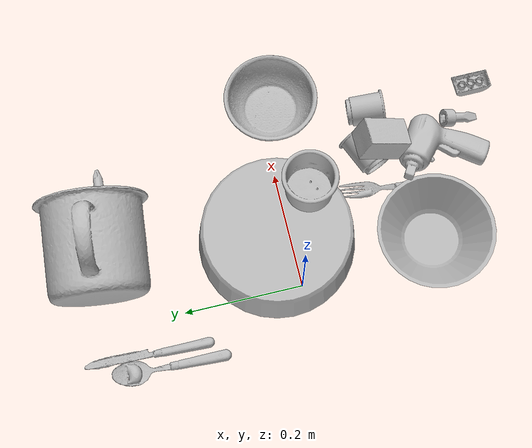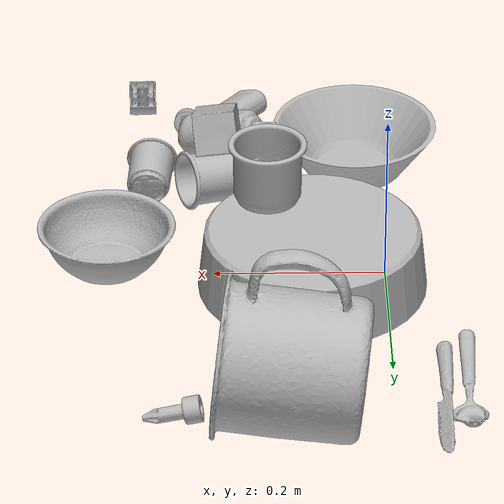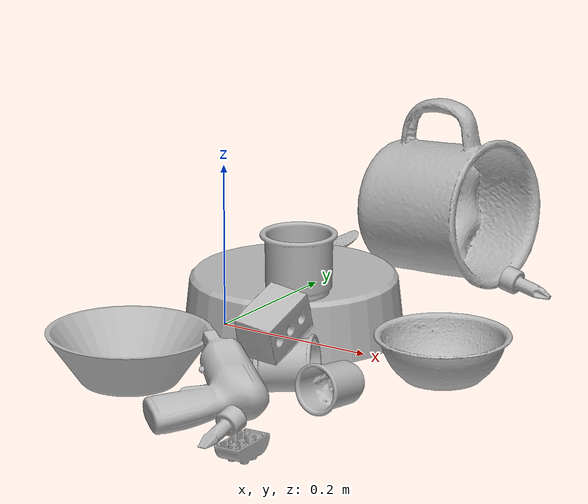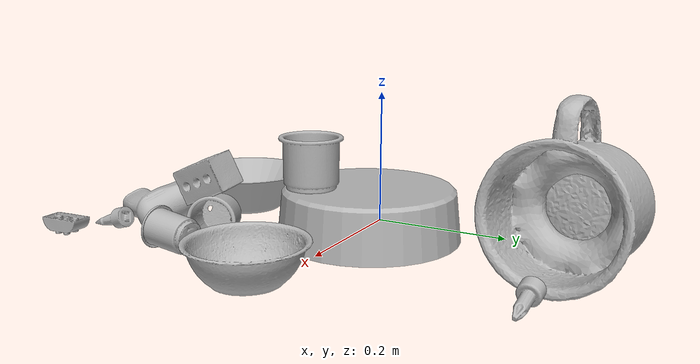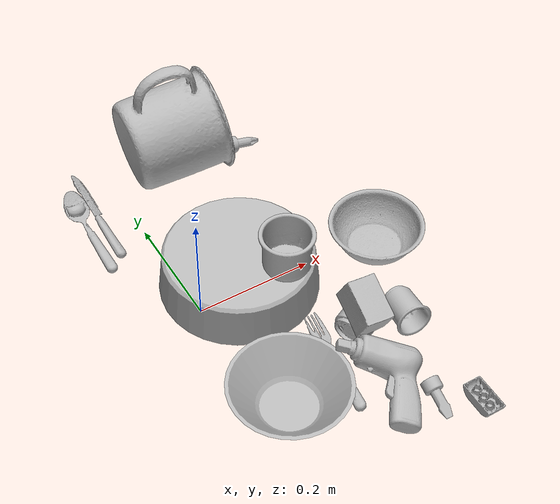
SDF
<sdf version="1.4">
  <world name="default">
    <light name="light1" type="point">
      <pose>0 0 1 0 0 0</pose>
      <diffuse>3 3 3 1</diffuse>
      <specular>3 3 3 1</specular>
    </light>
    <light name="light2" type="point">
      <pose>0 0.5 2 0 0 0</pose>
      <diffuse>1 1 1 1</diffuse>
      <specular>1 1 1 1</specular>
    </light>
    <light name="light3" type="point">
      <pose>0 0.5 2 0 0 0</pose>
      <diffuse>3 3 3 1</diffuse>
      <specular>3 3 3 1</specular>
    </light>
    <scene>
      <ambient>0.7 0.7 0.7</ambient>
    </scene>
    <model name="plate1">
      <link name="link_plate1">
        <collision name="default">
          <geometry>
            <mesh>
              <uri>model://pan_tefal/collision_meshes/collision.obj</uri>
              <scale>1.0 1.0 1.0</scale>
            </mesh>
          </geometry>
          <surface>
            <friction>
              <ode>
                <mu>0.5</mu>
                <mu2>0.5</mu2>
              </ode>
            </friction>
          <contact>
        <ode>
            <max_vel>0</max_vel>
            <min_depth>0.0001</min_depth>
            <kp>1e8</kp>
        </ode>
    </contact></surface>
        </collision>
        <visual name="default">
          <geometry>
            <mesh>
              <uri>model://pan_tefal/visual_meshes/visual.dae</uri>
              <scale>1.0 1.0 1.0</scale>
            </mesh>
          </geometry>
        </visual>
        <inertial>
          <mass>1.356081485748291</mass>
          <pose>-0.00018001878925133497 3.2792810088722035e-05 -0.008514934219419956 0.000819032333381865 -0.0003301471985614655 -0.33185384828338066</pose>
          <inertia>
            <ixx>0.009360965</ixx>
            <iyy>0.009421317</iyy>
            <izz>0.017231734</izz>
            <ixy>0</ixy>
            <ixz>0</ixz>
            <iyz>0</iyz>
          </inertia>
        </inertial>
      </link>
      <pose>0.0852552205324173 0.023022688925266266 0.037822023034095764 -3.1415926233841303 5.599329776042645e-09 1.0284705755793457</pose>
    </model>
    <model name="cup1">
      <link name="link_cup1">
        <collision name="default">
          <geometry>
            <mesh>
              <uri>model://mug/collision_meshes/collision.obj</uri>
              <scale>2.0 2.0 2.0</scale>
            </mesh>
          </geometry>
          <surface>
            <friction>
              <ode>
                <mu>0.5</mu>
                <mu2>0.5</mu2>
              </ode>
            </friction>
          <contact>
        <ode>
            <max_vel>0</max_vel>
            <min_depth>0.0001</min_depth>
            <kp>1e8</kp>
        </ode>
    </contact></surface>
        </collision>
        <visual name="default">
          <geometry>
            <mesh>
              <uri>model://mug/visual_meshes/visual.dae</uri>
              <scale>2.0 2.0 2.0</scale>
            </mesh>
          </geometry>
        </visual>
        <inertial>
          <mass>1.425228476524353</mass>
          <pose>0.019143342971801758 0.0016286519821733236 -0.021894657984375954 -0.12983169455958588 0.08737743422724535 0.05507285753370488</pose>
          <inertia>
            <ixx>0.005662833</ixx>
            <iyy>0.0063250507</iyy>
            <izz>0.0073150056</izz>
            <ixy>0</ixy>
            <ixz>0</ixz>
            <iyz>0</iyz>
          </inertia>
        </inertial>
      </link>
      <pose>0.11447884142398834 0.3138010501861572 0.11068855226039886 -0.06274973535345098 1.4841693195555687 -0.15985946760604372</pose>
    </model>
    <model name="silverware1">
      <link name="link_silverware1">
        <collision name="default">
          <geometry>
            <mesh>
              <uri>model://spoon/collision_meshes/collision.obj</uri>
              <scale>1.0 1.0 1.0</scale>
            </mesh>
          </geometry>
          <surface>
            <friction>
              <ode>
                <mu>0.5</mu>
                <mu2>0.5</mu2>
              </ode>
            </friction>
          <contact>
        <ode>
            <max_vel>0</max_vel>
            <min_depth>0.0001</min_depth>
            <kp>1e8</kp>
        </ode>
    </contact></surface>
        </collision>
        <visual name="default">
          <geometry>
            <mesh>
              <uri>model://spoon/visual_meshes/visual.dae</uri>
              <scale>1.0 1.0 1.0</scale>
            </mesh>
          </geometry>
        </visual>
        <inertial>
          <mass>0.031423501670360565</mass>
          <pose>-0.005526318680495024 -0.0016034176805987954 -0.000727165665011853 0.035217765619004186 -0.03906586018731898 0.006150610672177042</pose>
          <inertia>
            <ixx>1.7478262e-06</ixx>
            <iyy>0.0001195654</iyy>
            <izz>0.000120427336</izz>
            <ixy>0</ixy>
            <ixz>0</ixz>
            <iyz>0</iyz>
          </inertia>
        </inertial>
      </link>
      <pose>-0.08358490467071533 0.23938246071338654 0.00838525965809822 0.0067252572429125175 0.026893015016804522 1.5303759620922177</pose>
    </model>
    <model name="silverware2">
      <link name="link_silverware2">
        <collision name="default">
          <geometry>
            <mesh>
              <uri>model://fork/collision_meshes/collision.obj</uri>
              <scale>1.0 1.0 1.0</scale>
            </mesh>
          </geometry>
          <surface>
            <friction>
              <ode>
                <mu>0.5</mu>
                <mu2>0.5</mu2>
              </ode>
            </friction>
          <contact>
        <ode>
            <max_vel>0</max_vel>
            <min_depth>0.0001</min_depth>
            <kp>1e8</kp>
        </ode>
    </contact></surface>
        </collision>
        <visual name="default">
          <geometry>
            <mesh>
              <uri>model://fork/visual_meshes/visual.dae</uri>
              <scale>1.0 1.0 1.0</scale>
            </mesh>
          </geometry>
        </visual>
        <inertial>
          <mass>0.02368462271988392</mass>
          <pose>-0.02957003191113472 0.00046588238910771906 0.00032188621116802096 -0.013550757689210725 -0.010977831639922976 0.014453892765665301</pose>
          <inertia>
            <ixx>8.3028004e-07</ixx>
            <iyy>6.183376e-05</iyy>
            <izz>6.220513e-05</izz>
            <ixy>0</ixy>
            <ixz>0</ixz>
            <iyz>0</iyz>
          </inertia>
        </inertial>
      </link>
      <pose>0.13116908073425293 -0.1999531388282776 0.005689631216228008 -0.18889797373645317 0.024847456943211336 1.426218833964278</pose>
    </model>
    <model name="silverware3">
      <link name="link_silverware3">
        <collision name="default">
          <geometry>
            <mesh>
              <uri>model://knife/collision_meshes/collision.obj</uri>
              <scale>1.0 1.0 1.0</scale>
            </mesh>
          </geometry>
          <surface>
            <friction>
              <ode>
                <mu>0.5</mu>
                <mu2>0.5</mu2>
              </ode>
            </friction>
          <contact>
        <ode>
            <max_vel>0</max_vel>
            <min_depth>0.0001</min_depth>
            <kp>1e8</kp>
        </ode>
    </contact></surface>
        </collision>
        <visual name="default">
          <geometry>
            <mesh>
              <uri>model://knife/visual_meshes/visual.dae</uri>
              <scale>1.0 1.0 1.0</scale>
            </mesh>
          </geometry>
        </visual>
        <inertial>
          <mass>0.023530498147010803</mass>
          <pose>-0.023785250261425972 0.0015275124460458755 5.062020863988437e-05 0.07305757972864607 0.01724841573343299 -0.007409825279630946</pose>
          <inertia>
            <ixx>6.678909e-07</ixx>
            <iyy>9.040038e-05</iyy>
            <izz>9.0615475e-05</izz>
            <ixy>0</ixy>
            <ixz>0</ixz>
            <iyz>0</iyz>
          </inertia>
        </inertial>
      </link>
      <pose>-0.053953371942043304 0.27013689279556274 0.008207663893699646 0.5111064068576685 -0.012255587710194768 1.5346968770049145</pose>
    </model>
    <model name="cup3">
      <link name="link_cup3">
        <collision name="default">
          <geometry>
            <mesh>
              <uri>model://b_cups/collision_meshes/collision.obj</uri>
              <scale>1.0 1.0 1.0</scale>
            </mesh>
          </geometry>
          <surface>
            <friction>
              <ode>
                <mu>0.5</mu>
                <mu2>0.5</mu2>
              </ode>
            </friction>
          <contact>
        <ode>
            <max_vel>0</max_vel>
            <min_depth>0.0001</min_depth>
            <kp>1e8</kp>
        </ode>
    </contact></surface>
        </collision>
        <visual name="default">
          <geometry>
            <mesh>
              <uri>model://b_cups/visual_meshes/visual.dae</uri>
              <scale>1.0 1.0 1.0</scale>
            </mesh>
          </geometry>
        </visual>
        <inertial>
          <mass>0.033049143850803375</mass>
          <pose>0.0005182002205401659 0.001805859967134893 -0.0013381808530539274 0.11356265792291019 0.03872585472979472 -0.3457023826899558</pose>
          <inertia>
            <ixx>2.1632983e-05</ixx>
            <iyy>2.1222275e-05</iyy>
            <izz>1.8203747e-05</izz>
            <ixy>0</ixy>
            <ixz>0</ixz>
            <iyz>0</iyz>
          </inertia>
        </inertial>
      </link>
      <pose>0.27329444885253906 -0.18020318448543549 0.027739951387047768 -1.4801454065059108 -0.02770851965151554 3.045525235522357</pose>
    </model>
    <model name="cup4">
      <link name="link_cup4">
        <collision name="default">
          <geometry>
            <mesh>
              <uri>model://h_cups/collision_meshes/collision.obj</uri>
              <scale>1.0 1.0 1.0</scale>
            </mesh>
          </geometry>
          <surface>
            <friction>
              <ode>
                <mu>0.5</mu>
                <mu2>0.5</mu2>
              </ode>
            </friction>
          <contact>
        <ode>
            <max_vel>0</max_vel>
            <min_depth>0.0001</min_depth>
            <kp>1e8</kp>
        </ode>
    </contact></surface>
        </collision>
        <visual name="default">
          <geometry>
            <mesh>
              <uri>model://h_cups/visual_meshes/visual.dae</uri>
              <scale>1.0 1.0 1.0</scale>
            </mesh>
          </geometry>
        </visual>
        <inertial>
          <mass>0.11347958445549011</mass>
          <pose>-2.7030910132452846e-05 0.00023018615320324898 -0.0018405403243377805 -0.02436217983877791 0.06545222634893223 0.12885210457354207</pose>
          <inertia>
            <ixx>0.0001465536</ixx>
            <iyy>0.00014480477</iyy>
            <izz>0.00015369456</izz>
            <ixy>0</ixy>
            <ixz>0</ixz>
            <iyz>0</iyz>
          </inertia>
        </inertial>
      </link>
      <pose>0.13588660955429077 -0.0429273322224617 0.11358025670051575 -0.0013267827077756294 -0.0009696515497969379 1.9682519617895515</pose>
    </model>
    <model name="cup5">
      <link name="link_cup5">
        <collision name="default">
          <geometry>
            <mesh>
              <uri>model://d_cups/collision_meshes/collision.obj</uri>
              <scale>1.0 1.0 1.0</scale>
            </mesh>
          </geometry>
          <surface>
            <friction>
              <ode>
                <mu>0.5</mu>
                <mu2>0.5</mu2>
              </ode>
            </friction>
          <contact>
        <ode>
            <max_vel>0</max_vel>
            <min_depth>0.0001</min_depth>
            <kp>1e8</kp>
        </ode>
    </contact></surface>
        </collision>
        <visual name="default">
          <geometry>
            <mesh>
              <uri>model://d_cups/visual_meshes/visual.dae</uri>
              <scale>1.0 1.0 1.0</scale>
            </mesh>
          </geometry>
        </visual>
        <inertial>
          <mass>0.039110079407691956</mass>
          <pose>0.0008068050956353545 0.0019117392366752028 -0.0022666517179459333 0.24011224021147495 -0.247107611945545 0.594295747375292</pose>
          <inertia>
            <ixx>3.2744327e-05</ixx>
            <iyy>3.2649565e-05</iyy>
            <izz>2.9639183e-05</izz>
            <ixy>0</ixy>
            <ixz>0</ixz>
            <iyz>0</iyz>
          </inertia>
        </inertial>
      </link>
      <pose>0.1989983171224594 -0.16332069039344788 0.03250465169548988 1.4114636375089846 0.9743959555092851 1.8436758203841257</pose>
    </model>
    <model name="bowl1">
      <link name="link_bowl1">
        <collision name="default">
          <geometry>
            <mesh>
              <uri>model://bowl/collision_meshes/collision.obj</uri>
              <scale>1.0 1.0 1.0</scale>
            </mesh>
          </geometry>
          <surface>
            <friction>
              <ode>
                <mu>0.5</mu>
                <mu2>0.5</mu2>
              </ode>
            </friction>
          <contact>
        <ode>
            <max_vel>0</max_vel>
            <min_depth>0.0001</min_depth>
            <kp>1e8</kp>
        </ode>
    </contact></surface>
        </collision>
        <visual name="default">
          <geometry>
            <mesh>
              <uri>model://bowl/visual_meshes/visual.dae</uri>
              <scale>1.0 1.0 1.0</scale>
            </mesh>
          </geometry>
        </visual>
        <inertial>
          <mass>0.04740063101053238</mass>
          <pose>0.00020445372501853853 -0.001030205050483346 -0.000804265437182039 -0.015764138065403298 0.014546740803255881 0.7140373892972721</pose>
          <inertia>
            <ixx>0.00010888298</ixx>
            <iyy>0.000106450105</iyy>
            <izz>0.00018317858</izz>
            <ixy>0</ixy>
            <ixz>0</ixz>
            <iyz>0</iyz>
          </inertia>
        </inertial>
      </link>
      <pose>0.32318541407585144 -0.022872615605592728 0.02778000198304653 -5.14970753728377e-08 -4.9182099599381046e-08 -1.9164022535140774</pose>
    </model>
    <model name="bowl2">
      <link name="link_bowl2">
        <collision name="default">
          <geometry>
            <mesh>
              <uri>model://bowl_a/collision_meshes/collision.obj</uri>
              <scale>1.0 1.0 1.0</scale>
            </mesh>
          </geometry>
          <surface>
            <friction>
              <ode>
                <mu>0.5</mu>
                <mu2>0.5</mu2>
              </ode>
            </friction>
          <contact>
        <ode>
            <max_vel>0</max_vel>
            <min_depth>0.0001</min_depth>
            <kp>1e8</kp>
        </ode>
    </contact></surface>
        </collision>
        <visual name="default">
          <geometry>
            <mesh>
              <uri>model://bowl_a/visual_meshes/visual.dae</uri>
              <scale>1.0 1.0 1.0</scale>
            </mesh>
          </geometry>
        </visual>
        <inertial>
          <mass>0.4596928358078003</mass>
          <pose>0.0002786756376735866 4.731212538899854e-05 -0.001376529224216938 -0.0009805332698969178 -0.0010938264579112213 -0.1912378887702168</pose>
          <inertia>
            <ixx>0.0013087663</ixx>
            <iyy>0.0013168014</iyy>
            <izz>0.002327691</izz>
            <ixy>0</ixy>
            <ixz>0</ixz>
            <iyz>0</iyz>
          </inertia>
        </inertial>
      </link>
      <pose>0.026780668646097183 -0.2326718419790268 0.03038310445845127 5.091828029954102e-06 4.628328782057095e-06 2.1691705760069744</pose>
    </model>
    <model name="toy1">
      <link name="link_toy1">
        <collision name="default">
          <geometry>
            <mesh>
              <uri>model://d_toy_airplane/collision_meshes/collision.obj</uri>
              <scale>1.0 1.0 1.0</scale>
            </mesh>
          </geometry>
          <surface>
            <friction>
              <ode>
                <mu>0.5</mu>
                <mu2>0.5</mu2>
              </ode>
            </friction>
          <contact>
        <ode>
            <max_vel>0</max_vel>
            <min_depth>0.0001</min_depth>
            <kp>1e8</kp>
        </ode>
    </contact></surface>
        </collision>
        <visual name="default">
          <geometry>
            <mesh>
              <uri>model://d_toy_airplane/visual_meshes/visual.dae</uri>
              <scale>1.0 1.0 1.0</scale>
            </mesh>
          </geometry>
        </visual>
        <inertial>
          <mass>0.017302583903074265</mass>
          <pose>9.410295751877129e-05 -5.809326466987841e-05 -0.011728093028068542 0.00026573120399734447 0.004679044314999465 0.5192011935173154</pose>
          <inertia>
            <ixx>5.1869783e-06</ixx>
            <iyy>5.190892e-06</iyy>
            <izz>1.5659823e-06</izz>
            <ixy>0</ixy>
            <ixz>0</ixz>
            <iyz>0</iyz>
          </inertia>
        </inertial>
      </link>
      <pose>0.24819138646125793 0.29784175753593445 0.011408176273107529 1.795841626545675 0.23016140467159482 1.5878580157000521</pose>
    </model>
    <model name="toy2">
      <link name="link_toy2">
        <collision name="default">
          <geometry>
            <mesh>
              <uri>model://b_toy_airplane/collision_meshes/collision.obj</uri>
              <scale>1.0 1.0 1.0</scale>
            </mesh>
          </geometry>
          <surface>
            <friction>
              <ode>
                <mu>0.5</mu>
                <mu2>0.5</mu2>
              </ode>
            </friction>
          <contact>
        <ode>
            <max_vel>0</max_vel>
            <min_depth>0.0001</min_depth>
            <kp>1e8</kp>
        </ode>
    </contact></surface>
        </collision>
        <visual name="default">
          <geometry>
            <mesh>
              <uri>model://b_toy_airplane/visual_meshes/visual.dae</uri>
              <scale>1.0 1.0 1.0</scale>
            </mesh>
          </geometry>
        </visual>
        <inertial>
          <mass>0.45341360569000244</mass>
          <pose>0.00508136535063386 0.004015584941953421 0.00954306498169899 -0.04001809497736226 -0.04022180630889015 -0.560150289687741</pose>
          <inertia>
            <ixx>0.0008417707</ixx>
            <iyy>0.00033646397</iyy>
            <izz>0.0010472467</izz>
            <ixy>0</ixy>
            <ixz>0</ixz>
            <iyz>0</iyz>
          </inertia>
        </inertial>
      </link>
      <pose>0.18552280962467194 -0.28499454259872437 0.04151562228798866 3.1175662564398787 -0.3888743390090256 2.567010225635315</pose>
    </model>
    <model name="toy3">
      <link name="link_toy3">
        <collision name="default">
          <geometry>
            <mesh>
              <uri>model://a_lego_duplo/collision_meshes/collision.obj</uri>
              <scale>1.0 1.0 1.0</scale>
            </mesh>
          </geometry>
          <surface>
            <friction>
              <ode>
                <mu>0.5</mu>
                <mu2>0.5</mu2>
              </ode>
            </friction>
          <contact>
        <ode>
            <max_vel>0</max_vel>
            <min_depth>0.0001</min_depth>
            <kp>1e8</kp>
        </ode>
    </contact></surface>
        </collision>
        <visual name="default">
          <geometry>
            <mesh>
              <uri>model://a_lego_duplo/visual_meshes/visual.dae</uri>
              <scale>1.0 1.0 1.0</scale>
            </mesh>
          </geometry>
        </visual>
        <inertial>
          <mass>0.019445955753326416</mass>
          <pose>-0.00011337668547639623 0.0001851754350354895 0.00036926064058206975 -0.014116968054253443 -0.00012565964371363686 6.142473690124929e-05</pose>
          <inertia>
            <ixx>2.4931269e-06</ixx>
            <iyy>5.58515e-06</iyy>
            <izz>6.9184516e-06</izz>
            <ixy>0</ixy>
            <ixz>0</ixz>
            <iyz>0</iyz>
          </inertia>
        </inertial>
      </link>
      <pose>0.28294748067855835 -0.37651950120925903 0.012124788016080856 -3.1412867498562718 -0.01558325856250515 1.580127802754384</pose>
    </model>
    <model name="toy4">
      <link name="link_toy4">
        <collision name="default">
          <geometry>
            <mesh>
              <uri>model://foam_brick/collision_meshes/collision.obj</uri>
              <scale>1.0 1.0 1.0</scale>
            </mesh>
          </geometry>
          <surface>
            <friction>
              <ode>
                <mu>0.5</mu>
                <mu2>0.5</mu2>
              </ode>
            </friction>
          <contact>
        <ode>
            <max_vel>0</max_vel>
            <min_depth>0.0001</min_depth>
            <kp>1e8</kp>
        </ode>
    </contact></surface>
        </collision>
        <visual name="default">
          <geometry>
            <mesh>
              <uri>model://foam_brick/visual_meshes/visual.dae</uri>
              <scale>1.0 1.0 1.0</scale>
            </mesh>
          </geometry>
        </visual>
        <inertial>
          <mass>0.18476375937461853</mass>
          <pose>-0.00025224717683158815 0.0003458433784544468 -0.00025321010616607964 -0.2940193708875024 0.01727444338713918 -0.0007449870082442464</pose>
          <inertia>
            <ixx>8.070827e-05</ixx>
            <iyy>0.00012885487</iyy>
            <izz>0.00013049248</izz>
            <ixy>0</ixy>
            <ixz>0</ixz>
            <iyz>0</iyz>
          </inertia>
        </inertial>
      </link>
      <pose>0.19327940046787262 -0.18167714774608612 0.08714712411165237 -1.7004952989262878 0.39869545421346464 -1.6518607304250712</pose>
    </model>
    <model name="toy5">
      <link name="link_toy5">
        <collision name="default">
          <geometry>
            <mesh>
              <uri>model://e_toy_airplane/collision_meshes/collision.obj</uri>
              <scale>1.0 1.0 1.0</scale>
            </mesh>
          </geometry>
          <surface>
            <friction>
              <ode>
                <mu>0.5</mu>
                <mu2>0.5</mu2>
              </ode>
            </friction>
          <contact>
        <ode>
            <max_vel>0</max_vel>
            <min_depth>0.0001</min_depth>
            <kp>1e8</kp>
        </ode>
    </contact></surface>
        </collision>
        <visual name="default">
          <geometry>
            <mesh>
              <uri>model://e_toy_airplane/visual_meshes/visual.dae</uri>
              <scale>1.0 1.0 1.0</scale>
            </mesh>
          </geometry>
        </visual>
        <inertial>
          <mass>0.01085815578699112</mass>
          <pose>0.00011740455374820158 -2.248299279017374e-05 -0.011187206953763962 0.005518501127689679 0.009228289957601814 0.15041514141603637</pose>
          <inertia>
            <ixx>3.3140323e-06</ixx>
            <iyy>3.2801318e-06</iyy>
            <izz>9.959974e-07</izz>
            <ixy>0</ixy>
            <ixz>0</ixz>
            <iyz>0</iyz>
          </inertia>
        </inertial>
      </link>
      <pose>0.22697457671165466 -0.34084945917129517 0.010173764079809189 2.97151633437824 -1.2657805232676373 -1.4555819903786145</pose>
    </model>
  <physics type="ode">
      <max_contacts>50</max_contacts>
      <ode>
        <solver>
          <type>quick</type>
          <iters>75</iters>
        </solver>
        <constraints>
          <contact_max_correcting_vel>0</contact_max_correcting_vel>
          <contact_surface_layer>0</contact_surface_layer>
        </constraints>
      </ode>
    </physics></world>
</sdf>
